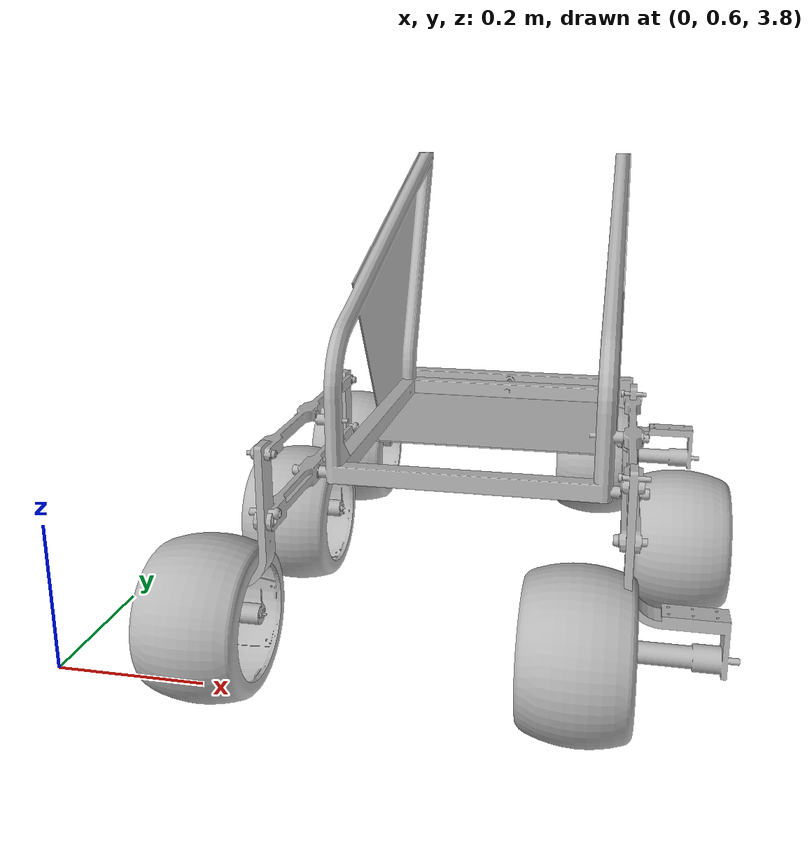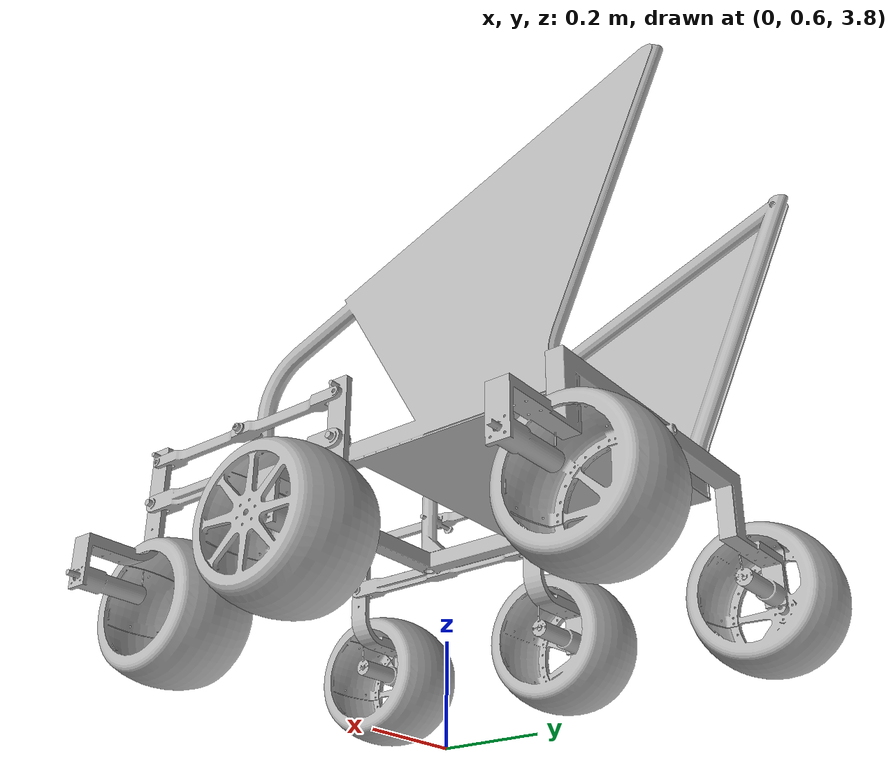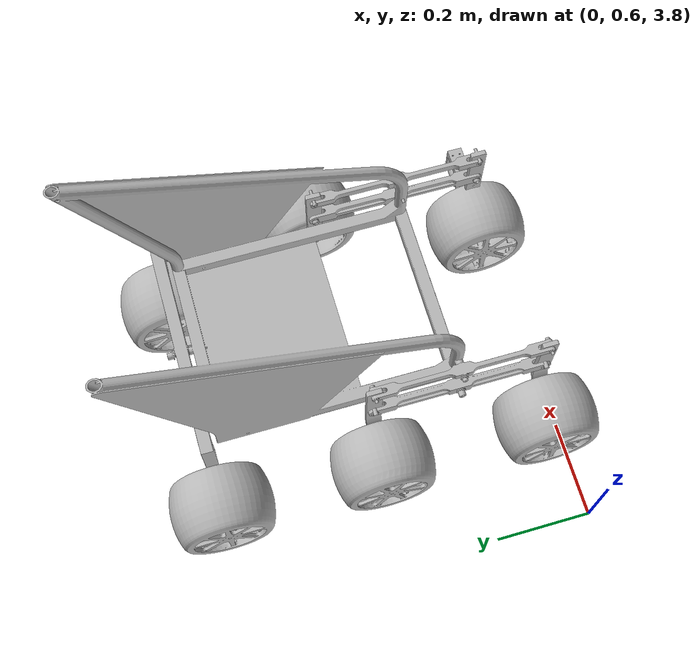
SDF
<?xml verion='1.0'?>
<sdf version='1.4'>
  <model name='surus_sim'>
    <pose>0.5 1 4 0 0 3.14</pose>
    <link name='base_link'>
      <pose>0 0 0 0 -0 0</pose>
      <inertial>
        <pose>9.82193e-08 0.156634 0.148833 0 -0 0</pose>
        <mass>4.8815</mass>
        <inertia>
          <ixx>0.261849</ixx>
          <ixy>3.50817e-07</ixy>
          <ixz>5.97879e-07</ixz>
          <iyy>0.320855</iyy>
          <iyz>0.0511772</iyz>
          <izz>0.242019</izz>
        </inertia>
      </inertial>
      <collision name='base_link_collision'>
        <pose>0 0 0 0 -0 0</pose>
        <geometry>
          <mesh>
            <scale>1 1 1</scale>
            <uri>model://meshes/base_link.STL</uri>
          </mesh>
        </geometry>
      </collision>
      <visual name='base_link_visual'>
        <pose>0 0 0 0 -0 0</pose>
        <geometry>
          <mesh>
            <scale>1 1 1</scale>
            <uri>model://surus_sim/meshes/base_link/base_link.DAE</uri>
          </mesh>
        </geometry>
      </visual>
      <velocity_decay>
        <linear>0</linear>
        <angular>0</angular>
      </velocity_decay>
    </link>
    <link name='left_bot_link'>
      <pose>-0.206375 0.187325 0.014986 -1.5708 -5.55112e-17 -1.5708</pose>
      <inertial>
        <pose>9.02039e-05 1.18183e-06 -0.012688 0 -0 0</pose>
        <mass>0.43167</mass>
        <inertia>
          <ixx>3.69944e-05</ixx>
          <ixy>1.50093e-07</ixy>
          <ixz>1.23836e-07</ixz>
          <iyy>0.00497322</iyy>
          <iyz>7.9505e-09</iyz>
          <izz>0.00497491</izz>
        </inertia>
      </inertial>
      <collision name='left_bot_link_collision'>
        <pose>0 0 0 0 -0 0</pose>
        <geometry>
          <mesh>
            <scale>1 1 1</scale>
            <uri>model://surus_sim/meshes/left_bot_link.STL</uri>
          </mesh>
        </geometry>
      </collision>
      <visual name='left_bot_link_visual'>
        <pose>0 0 0 0 -0 0</pose>
        <geometry>
          <mesh>
            <scale>1 1 1</scale>
            <uri>model://surus_sim/meshes/left_bot_link.STL</uri>
          </mesh>
        </geometry>
      </visual>
      <velocity_decay>
        <linear>0</linear>
        <angular>0</angular>
      </velocity_decay>
    </link>
    <joint name='left_bot_joint' type='revolute'>
      <child>left_bot_link</child>
      <parent>base_link</parent>
      <axis>
        <xyz>-1 3.60822e-15 3.60822e-15</xyz>
        <limit>
          <lower>-1e+16</lower>
          <upper>1e+16</upper>
        </limit>
        <dynamics/>
      </axis>
    </joint>
    <link name='left_top_link'>
      <pose>-0.206375 0.187325 0.091186 1.5708 -5.55112e-17 1.5708</pose>
      <inertial>
        <pose>9.74702e-06 -1.35767e-10 -0.0127032 0 -0 0</pose>
        <mass>0.221532</mass>
        <inertia>
          <ixx>1.23673e-05</ixx>
          <ixy>3.22033e-12</ixy>
          <ixz>-1.44908e-08</ixz>
          <iyy>0.00271814</iyy>
          <iyz>2.51895e-13</iyz>
          <izz>0.00271468</izz>
        </inertia>
      </inertial>
      <collision name='left_top_link_collision'>
        <pose>0 0 0 0 -0 0</pose>
        <geometry>
          <mesh>
            <scale>1 1 1</scale>
            <uri>model://surus_sim/meshes/left_top_link.STL</uri>
          </mesh>
        </geometry>
      </collision>
      <visual name='left_top_link_visual'>
        <pose>0 0 0 0 -0 0</pose>
        <geometry>
          <mesh>
            <scale>1 1 1</scale>
            <uri>model://surus_sim/meshes/left_top_link.STL</uri>
          </mesh>
        </geometry>
      </visual>
      <velocity_decay>
        <linear>0</linear>
        <angular>0</angular>
      </velocity_decay>
    </link>
    <joint name='left_top_link_joint' type='revolute'>
      <child>left_top_link</child>
      <parent>base_link</parent>
      <axis>
        <xyz>-1 -3.60822e-15 3.60822e-15</xyz>
        <limit>
          <lower>-1e+16</lower>
          <upper>1e+16</upper>
        </limit>
        <dynamics/>
      </axis>
    </joint>
    <link name='left_vert_back_link'>
      <pose>-0.206375 0.009525 0.091186 -1.5708 0 1.5708</pose>
      <inertial>
        <pose>0.118724 -0.0490373 -0.0508879 0 -0 0</pose>
        <mass>0.380721</mass>
        <inertia>
          <ixx>0.000972882</ixx>
          <ixy>-0.00059396</ixy>
          <ixz>-0.000728839</ixz>
          <iyy>0.00216633</iyy>
          <iyz>0.000301022</iyz>
          <izz>0.00174116</izz>
        </inertia>
      </inertial>
      <collision name='left_vert_back_link_collision'>
        <pose>0 0 0 0 -0 0</pose>
        <geometry>
          <mesh>
            <scale>1 1 1</scale>
            <uri>model://surus_sim/meshes/right_vert_back_link.STL</uri>
          </mesh>
        </geometry>
      </collision>
      <visual name='left_vert_back_link_visual'>
        <pose>0 0 0 0 -0 0</pose>
        <geometry>
          <mesh>
            <scale>1 1 1</scale>
            <uri>model://surus_sim/meshes/right_vert_back_link.STL</uri>
          </mesh>
        </geometry>
      </visual>
      <velocity_decay>
        <linear>0</linear>
        <angular>0</angular>
      </velocity_decay>
    </link>
    <joint name='left_vert_back_top_joint' type='revolute'>
      <child>left_vert_back_link</child>
      <parent>left_top_link</parent>
      <axis>
        <xyz>-1 -3.60822e-15 3.75394e-15</xyz>
        <limit>
          <lower>-1e+16</lower>
          <upper>1e+16</upper>
        </limit>
        <dynamics/>
      </axis>
    </joint>
    <link name='left_mid_wheel'>
      <pose>-0.232225 0.00965 -0.123952 -1.5708 -0.822922 1.5708</pose>
      <inertial>
        <pose>2.70923e-11 -3.83119e-11 0.0766077 0 -0 0</pose>
        <mass>1.06273</mass>
        <inertia>
          <ixx>0.0065887</ixx>
          <ixy>-2.96403e-12</ixy>
          <ixz>2.67377e-10</ixz>
          <iyy>0.0065887</iyy>
          <iyz>1.89768e-10</iyz>
          <izz>0.00854795</izz>
        </inertia>
      </inertial>
      <collision name='left_mid_wheel_collision'>
        <pose>0 0 0 0 -0 0</pose>
        <geometry>
          <mesh>
            <scale>1 1 1</scale>
            <uri>model://surus_sim/meshes/left_mid_wheel.STL</uri>
          </mesh>
        </geometry>
      </collision>
      <visual name='left_mid_wheel_visual'>
        <pose>0 0 0 0 -0 0</pose>
        <geometry>
          <mesh>
            <scale>1 1 1</scale>
            <uri>model://surus_sim/meshes/wheels/all_right_wheels/right_wheel.DAE</uri>
          </mesh>
        </geometry>
      </visual>
      <velocity_decay>
        <linear>0</linear>
        <angular>0</angular>
      </velocity_decay>
    </link>
    <joint name='left_mid_wheel_joint' type='revolute'>
      <child>left_mid_wheel</child>
      <parent>left_vert_back_link</parent>
      <axis>
        <xyz>-1 -1.33227e-15 5.9952e-15</xyz>
        <limit>
          <lower>-1e+16</lower>
          <upper>1e+16</upper>
        </limit>
        <dynamics/>
      </axis>
    </joint>
    <link name='left_vert_front_link'>
      <pose>-0.206375 0.365125 0.091186 -1.5708 0 1.5708</pose>
      <inertial>
        <pose>-0.118724 0.0490373 -0.0508879 0 -0 0</pose>
        <mass>0.380721</mass>
        <inertia>
          <ixx>0.000972882</ixx>
          <ixy>-0.00059396</ixy>
          <ixz>0.000728839</ixz>
          <iyy>0.00216633</iyy>
          <iyz>-0.000301022</iyz>
          <izz>0.00174116</izz>
        </inertia>
      </inertial>
      <collision name='left_vert_front_link_collision'>
        <pose>0 0 0 0 -0 0</pose>
        <geometry>
          <mesh>
            <scale>1 1 1</scale>
	    <uri>model://surus_sim/meshes/right_vert_back_link.STL</uri>
          </mesh>
        </geometry>
      </collision>
      <visual name='left_vert_front_link_visual'>
        <pose>0 0 0 0 -0 0</pose>
        <geometry>
          <mesh>
            <scale>1 1 1</scale>
            <uri>model://surus_sim/meshes/right_vert_back_link.STL</uri>
          </mesh>
        </geometry>
      </visual>
      <velocity_decay>
        <linear>0</linear>
        <angular>0</angular>
      </velocity_decay>
    </link>
    <joint name='left_vert_front_top_joint' type='revolute'>
      <child>left_vert_front_link</child>
      <parent>left_top_link</parent>
      <axis>
        <xyz>-1 -3.63598e-15 3.77476e-15</xyz>
        <limit>
          <lower>-1e+16</lower>
          <upper>1e+16</upper>
        </limit>
        <dynamics/>
      </axis>
    </joint>
    <link name='left_front_wheel'>
      <pose>-0.232225 0.36525 -0.123952 -1.5708 -3.10862e-15 1.5708</pose>
      <inertial>
        <pose>2.71474e-11 3.83121e-11 -0.0766077 0 -0 0</pose>
        <mass>1.06273</mass>
        <inertia>
          <ixx>0.0065887</ixx>
          <ixy>2.96403e-12</ixy>
          <ixz>-2.67376e-10</ixz>
          <iyy>0.0065887</iyy>
          <iyz>1.89768e-10</iyz>
          <izz>0.00854795</izz>
        </inertia>
      </inertial>
      <collision name='left_front_wheel_collision'>
        <pose>0 0 0 0 -0 0</pose>
        <geometry>
          <mesh>
            <scale>1 1 1</scale>
            <uri>model://surus_sim/meshes/left_front_wheel.STL</uri>
          </mesh>
        </geometry>
      </collision>
      <visual name='left_front_wheel_visual'>
        <pose>0 0 0 0 -0 0</pose>
        <geometry>
          <mesh>
            <scale>1 1 1</scale>
            <uri>model://surus_sim/meshes/wheels/all_right_wheels/right_wheel.DAE</uri>
          </mesh>
        </geometry>
      </visual>
      <velocity_decay>
        <linear>0</linear>
        <angular>0</angular>
      </velocity_decay>
    </link>
    <joint name='left_front_wheel_joint' type='revolute'>
      <child>left_front_wheel</child>
      <parent>left_vert_front_link</parent>
      <axis>
        <xyz>-1 -3.66374e-15 3.83027e-15</xyz>
        <limit>
          <lower>-1e+16</lower>
          <upper>1e+16</upper>
        </limit>
        <dynamics/>
      </axis>
    </joint>
    <link name='rear_rocker_link'>
      <pose>0 -0.311013 0.014986 -1.5708 -5.55112e-17 -1.5708</pose>
      <inertial>
        <pose>0.0191873 0.049316 -4.21302e-12 0 -0 0</pose>
        <mass>0.778383</mass>
        <inertia>
          <ixx>0.0385677</ixx>
          <ixy>-5.49053e-09</ixy>
          <ixz>2.80742e-06</ixz>
          <iyy>0.0364122</iyy>
          <iyz>6.61432e-10</iyz>
          <izz>0.00228047</izz>
        </inertia>
      </inertial>
      <collision name='rear_rocker_link_collision'>
        <pose>0 0 0 0 -0 0</pose>
        <geometry>
          <mesh>
            <scale>1 1 1</scale>
            <uri>model://surus_sim/meshes/rear_rocker_link.STL</uri>
          </mesh>
        </geometry>
      </collision>
      <visual name='rear_rocker_link_visual'>
        <pose>0 0 0 0 -0 0</pose>
        <geometry>
          <mesh>
            <scale>1 1 1</scale>
            <uri>model://surus_sim/meshes/rear_rocker_link.STL</uri>
          </mesh>
        </geometry>
      </visual>
      <velocity_decay>
        <linear>0</linear>
        <angular>0</angular>
      </velocity_decay>
    </link>
    <joint name='rear_rocker_joint' type='revolute'>
      <child>rear_rocker_link</child>
      <parent>base_link</parent>
      <axis>
        <xyz>3.60822e-15 1 -5.55112e-17</xyz>
        <limit>
          <lower>-1e+16</lower>
          <upper>1e+16</upper>
        </limit>
        <dynamics/>
      </axis>
    </joint>
    <link name='rear_left_wheel_link'>
      <pose>-0.22905 -0.330073 -0.123952 -1.5708 -5.55112e-17 1.5708</pose>
      <inertial>
        <pose>2.71476e-11 3.8312e-11 -0.0766077 0 -0 0</pose>
        <mass>1.06273</mass>
        <inertia>
          <ixx>0.0065887</ixx>
          <ixy>2.96403e-12</ixy>
          <ixz>-2.67376e-10</ixz>
          <iyy>0.0065887</iyy>
          <iyz>1.89768e-10</iyz>
          <izz>0.00854795</izz>
        </inertia>
      </inertial>
      <collision name='rear_left_wheel_link_collision'>
        <pose>0 0 0 0 -0 0</pose>
        <geometry>
          <mesh>
            <scale>1 1 1</scale>
            <uri>model://surus_sim/meshes/rear_left_wheel_link.STL</uri>
          </mesh>
        </geometry>
      </collision>
      <visual name='rear_left_wheel_link_visual'>
        <pose>0 0 0 0 -0 0</pose>
        <geometry>
          <mesh>
            <scale>1 1 1</scale>
            <uri>model://surus_sim/meshes/wheels/all_right_wheels/right_wheel.DAE</uri>
          </mesh>
        </geometry>
      </visual>
      <velocity_decay>
        <linear>0</linear>
        <angular>0</angular>
      </velocity_decay>
    </link>
    <joint name='rear_left_wheel_joint' type='revolute'>
      <child>rear_left_wheel_link</child>
      <parent>rear_rocker_link</parent>
      <axis>
        <xyz>-1 3.60822e-15 3.4972e-15</xyz>
        <limit>
          <lower>-1e+16</lower>
          <upper>1e+16</upper>
        </limit>
        <dynamics/>
      </axis>
    </joint>
    <link name='rear_right_wheel'>
      <pose>0.22905 -0.330327 -0.123952 1.5708 3.27516e-15 1.5708</pose>
      <inertial>
        <pose>2.70903e-11 -3.83118e-11 0.0766077 0 -0 0</pose>
        <mass>1.06273</mass>
        <inertia>
          <ixx>0.0065887</ixx>
          <ixy>-2.96428e-12</ixy>
          <ixz>2.67377e-10</ixz>
          <iyy>0.0065887</iyy>
          <iyz>1.89768e-10</iyz>
          <izz>0.00854795</izz>
        </inertia>
      </inertial>
      <collision name='rear_right_wheel_collision'>
        <pose>0 0 0 0 -0 0</pose>
        <geometry>
          <mesh>
            <scale>1 1 1</scale>
            <uri>model://surus_sim/meshes/rear_right_wheel.STL</uri>
          </mesh>
        </geometry>
      </collision>
      <visual name='rear_right_wheel_visual'>
        <pose>0 0 0 0 -0 0</pose>
        <geometry>
          <mesh>
            <scale>1 1 1</scale>
            <uri>model://surus_sim/meshes/wheels/all_right_wheels/right_wheel.DAE</uri>
          </mesh>
        </geometry>
      </visual>
      <velocity_decay>
        <linear>0</linear>
        <angular>0</angular>
      </velocity_decay>
    </link>
    <joint name='rear_right_wheel_joint' type='revolute'>
      <child>rear_right_wheel</child>
      <parent>rear_rocker_link</parent>
      <axis>
        <xyz>-1 3.69149e-15 3.4972e-15</xyz>
        <limit>
          <lower>-1e+16</lower>
          <upper>1e+16</upper>
        </limit>
        <dynamics/>
      </axis>
    </joint>
    <link name='right_bot_link'>
      <pose>0.206375 0.187325 0.014986 1.5708 -5.55112e-17 1.5708</pose>
      <inertial>
        <pose>9.02039e-05 -1.18183e-06 0.012688 0 -0 0</pose>
        <mass>0.43167</mass>
        <inertia>
          <ixx>3.69944e-05</ixx>
          <ixy>-1.50093e-07</ixy>
          <ixz>-1.23836e-07</ixz>
          <iyy>0.00497322</iyy>
          <iyz>7.9505e-09</iyz>
          <izz>0.00497491</izz>
        </inertia>
      </inertial>
      <collision name='right_bot_link_collision'>
        <pose>0 0 0 0 -0 0</pose>
        <geometry>
          <mesh>
            <scale>1 1 1</scale>
            <uri>model://surus_sim/meshes/right_bot_link.STL</uri>
          </mesh>
        </geometry>
      </collision>
      <visual name='right_bot_link_visual'>
        <pose>0 0 0 0 -0 0</pose>
        <geometry>
          <mesh>
            <scale>1 1 1</scale>
            <uri>model://surus_sim/meshes/right_bot_link.STL</uri>
          </mesh>
        </geometry>
      </visual>
      <velocity_decay>
        <linear>0</linear>
        <angular>0</angular>
      </velocity_decay>
    </link>
    <joint name='right_bot_joint' type='revolute'>
      <child>right_bot_link</child>
      <parent>base_link</parent>
      <axis>
        <xyz>-1 -3.60822e-15 3.60822e-15</xyz>
        <limit>
          <lower>-1e+16</lower>
          <upper>1e+16</upper>
        </limit>
        <dynamics/>
      </axis>
    </joint>
    <link name='right_top_link'>
      <pose>0.206375 0.187325 0.091186 -1.5708 -5.55112e-17 -1.5708</pose>
      <inertial>
        <pose>9.74702e-06 1.35777e-10 0.0127032 0 -0 0</pose>
        <mass>0.221532</mass>
        <inertia>
          <ixx>1.23673e-05</ixx>
          <ixy>-3.22602e-12</ixy>
          <ixz>1.44908e-08</ixz>
          <iyy>0.00271814</iyy>
          <iyz>2.51895e-13</iyz>
          <izz>0.00271468</izz>
        </inertia>
      </inertial>
      <collision name='right_top_link_collision'>
        <pose>0 0 0 0 -0 0</pose>
        <geometry>
          <mesh>
            <scale>1 1 1</scale>
            <uri>model://surus_sim/meshes/right_top_link.STL</uri>
          </mesh>
        </geometry>
      </collision>
      <visual name='right_top_link_visual'>
        <pose>0 0 0 0 -0 0</pose>
        <geometry>
          <mesh>
            <scale>1 1 1</scale>
            <uri>model://surus_sim/meshes/right_top_link.STL</uri>
          </mesh>
        </geometry>
      </visual>
      <velocity_decay>
        <linear>0</linear>
        <angular>0</angular>
      </velocity_decay>
    </link>
    <joint name='right_top_joint' type='revolute'>
      <child>right_top_link</child>
      <parent>base_link</parent>
      <axis>
        <xyz>-1 3.60822e-15 3.60822e-15</xyz>
        <limit>
          <lower>-1e+16</lower>
          <upper>1e+16</upper>
        </limit>
        <dynamics/>
      </axis>
    </joint>
    <link name='right_vert_back_link'>
      <pose>0.206375 0.009525 0.091186 -1.5708 -5.55112e-17 -1.5708</pose>
      <inertial>
        <pose>1.31678e-05 0.128452 0.0508879 0 -0 0</pose>
        <mass>0.380721</mass>
        <inertia>
          <ixx>0.00241155</ixx>
          <ixy>4.3452e-07</ixy>
          <ixz>9.45521e-08</ixz>
          <iyy>0.000727663</iyy>
          <iyz>0.000788556</iyz>
          <izz>0.00174116</izz>
        </inertia>
      </inertial>
      <collision name='right_vert_back_link_collision'>
        <pose>0 0 0 0 -0 0</pose>
        <geometry>
          <mesh>
            <scale>1 1 1</scale>
            <uri>model://surus_sim/meshes/right_vert_back_link.STL</uri>
          </mesh>
        </geometry>
      </collision>
      <visual name='right_vert_back_link_visual'>
        <pose>0 0 0 0 -0 0</pose>
        <geometry>
          <mesh>
            <scale>1 1 1</scale>
            <uri>model://surus_sim/meshes/right_vert_back_link.STL</uri>
          </mesh>
        </geometry>
      </visual>
      <velocity_decay>
        <linear>0</linear>
        <angular>0</angular>
      </velocity_decay>
    </link>
    <joint name='right_vert_top_back_joint' type='revolute'>
      <child>right_vert_back_link</child>
      <parent>right_top_link</parent>
      <axis>
        <xyz>-1 3.60822e-15 3.60822e-15</xyz>
        <limit>
          <lower>-1e+16</lower>
          <upper>1e+16</upper>
        </limit>
        <dynamics/>
      </axis>
    </joint>
    <link name='right_mid_wheel'>
      <pose>0.232225 0.0094 -0.123952 -1.5708 -1.179 -1.5708</pose>
      <inertial>
        <pose>2.69724e-11 -3.8262e-11 0.0766077 0 -0 0</pose>
        <mass>1.06273</mass>
        <inertia>
          <ixx>0.0065887</ixx>
          <ixy>-2.96403e-12</ixy>
          <ixz>2.67377e-10</ixz>
          <iyy>0.0065887</iyy>
          <iyz>1.89768e-10</iyz>
          <izz>0.00854795</izz>
        </inertia>
      </inertial>
      <collision name='right_mid_wheel_collision'>
        <pose>0 0 0 0 -0 0</pose>
        <geometry>
          <mesh>
            <scale>1 1 1</scale>
            <uri>model://surus_sim/meshes/right_mid_wheel.STL</uri>
          </mesh>
        </geometry>
      </collision>
      <visual name='right_mid_wheel_visual'>
        <pose>0 0 0 0 -0 0</pose>
        <geometry>
          <mesh>
            <scale>1 1 1</scale>
            <uri>model://surus_sim/meshes/wheels/all_right_wheels/right_wheel.DAE</uri>
          </mesh>
        </geometry>
      </visual>
      <velocity_decay>
        <linear>0</linear>
        <angular>0</angular>
      </velocity_decay>
    </link>
    <joint name='mid_wheel_joint' type='revolute'>
      <child>right_mid_wheel</child>
      <parent>right_vert_back_link</parent>
      <axis>
        <xyz>-1 3.60822e-15 3.60822e-15</xyz>
        <limit>
          <lower>-1e+16</lower>
          <upper>1e+16</upper>
        </limit>
        <dynamics/>
      </axis>
    </joint>
    <link name='right_vert_front_link'>
      <pose>0.206375 0.365125 0.091186 -1.5708 -5.55112e-17 -1.5708</pose>
      <inertial>
        <pose>1.31678e-05 0.128452 0.0508879 0 -0 0</pose>
        <mass>0.380721</mass>
        <inertia>
          <ixx>0.00241155</ixx>
          <ixy>4.3452e-07</ixy>
          <ixz>9.45521e-08</ixz>
          <iyy>0.000727663</iyy>
          <iyz>0.000788556</iyz>
          <izz>0.00174116</izz>
        </inertia>
      </inertial>
      <collision name='right_vert_front_link_collision'>
        <pose>0 0 0 0 -0 0</pose>
        <geometry>
          <mesh>
            <scale>1 1 1</scale>
            <uri>model://surus_sim/meshes/right_vert_front_link.STL</uri>
          </mesh>
        </geometry>
      </collision>
      <visual name='right_vert_front_link_visual'>
        <pose>0 0 0 0 -0 0</pose>
        <geometry>
          <mesh>
            <scale>1 1 1</scale>
            <uri>model://surus_sim/meshes/right_vert_front_link.STL</uri>
          </mesh>
        </geometry>
      </visual>
      <velocity_decay>
        <linear>0</linear>
        <angular>0</angular>
      </velocity_decay>
    </link>
    <joint name='right_vert_top_front_joint' type='revolute'>
      <child>right_vert_front_link</child>
      <parent>right_top_link</parent>
      <axis>
        <xyz>-1 3.60822e-15 3.60822e-15</xyz>
        <limit>
          <lower>-1e+16</lower>
          <upper>1e+16</upper>
        </limit>
        <dynamics/>
      </axis>
    </joint>
    <link name='right_front_wheel'>
      <pose>0.232225 0.365 -0.123952 1.5708 3.27516e-15 1.5708</pose>
      <inertial>
        <pose>2.70902e-11 -3.81492e-11 0.0766077 0 -0 0</pose>
        <mass>1.06273</mass>
        <inertia>
          <ixx>0.0065887</ixx>
          <ixy>-2.96428e-12</ixy>
          <ixz>2.67377e-10</ixz>
          <iyy>0.0065887</iyy>
          <iyz>1.89768e-10</iyz>
          <izz>0.00854795</izz>
        </inertia>
      </inertial>
      <collision name='right_front_wheel_collision'>
        <pose>0 0 0 0 -0 0</pose>
        <geometry>
          <mesh>
            <scale>1 1 1</scale>
            <uri>model://surus_sim/meshes/right_front_wheel.STL</uri>
          </mesh>
        </geometry>
      </collision>
      <visual name='right_front_wheel_visual'>
        <pose>0 0 0 0 -0 0</pose>
        <geometry>
          <mesh>
            <scale>1 1 1</scale>
            <uri>model://surus_sim/meshes/wheels/all_right_wheels/right_wheel.DAE</uri>
          </mesh>
        </geometry>
      </visual>
      <velocity_decay>
        <linear>0</linear>
        <angular>0</angular>
      </velocity_decay>
    </link>
    <joint name='right_front_wheel_joint' type='revolute'>
      <child>right_front_wheel</child>
      <parent>right_vert_front_link</parent>
      <axis>
        <xyz>-1 3.66374e-15 3.69149e-15</xyz>
        <limit>
          <lower>-1e+16</lower>
          <upper>1e+16</upper>
        </limit>
        <dynamics/>
      </axis>
    </joint>

    <joint name='right_vert_bot_front_joint' type='revolute'>
      <child>right_vert_front_link</child>
      <parent>right_bot_link</parent>
      <pose>0 0.0762 0 0 0 0</pose>
      <axis>
        <xyz>-1 3.60822e-15 3.60822e-15</xyz>
        <limit>
          <lower>-1e+16</lower>
          <upper>1e+16</upper>
        </limit>
        <dynamics/>
      </axis>
    </joint>

    <joint name='right_vert_bot_back_joint' type='revolute'>
      <child>right_vert_back_link</child>
      <parent>right_bot_link</parent>
      <pose>0 0.0762 0 0 0 0</pose>
      <axis>
        <xyz>-1 3.60822e-15 3.60822e-15</xyz>
        <limit>
          <lower>-1e+16</lower>
          <upper>1e+16</upper>
        </limit>
        <dynamics/>
      </axis>
    </joint>

    <joint name='left_vert_bot_front_joint' type='revolute'>
      <child>left_vert_front_link</child>
      <parent>left_bot_link</parent>
      <pose>0 0.0762 0 0 0 0</pose>
      <axis>
        <xyz>-1 3.60822e-15 3.60822e-15</xyz>
        <limit>
          <lower>-1e+16</lower>
          <upper>1e+16</upper>
        </limit>
        <dynamics/>
      </axis>
    </joint>

    <joint name='left_vert_bot_back_joint' type='revolute'>
      <child>left_vert_back_link</child>
      <parent>left_bot_link</parent>
      <pose>0 0.0762 0 0 0 0</pose>
      <axis>
        <xyz>-1 3.60822e-15 3.60822e-15</xyz>
        <limit>
          <lower>-1e+16</lower>
          <upper>1e+16</upper>
        </limit>
        <dynamics/>
      </axis>
    </joint>

    <plugin name="hector_6w_diff_controller" filename="libdiffdrive_plugin_6w.so">
            <alwaysOn>1</alwaysOn>
            <updateRate>10.0</updateRate>
            <wheelSeparation>0.5116</wheelSeparation>
            <wheelDiameter>0.2191</wheelDiameter>
            <torque>35</torque>
	    <frontLeftJoint>left_front_wheel_joint</frontLeftJoint>
            <frontRightJoint>right_front_wheel_joint</frontRightJoint>
            <midLeftJoint>left_mid_wheel_joint</midLeftJoint>
            <midRightJoint>mid_wheel_joint</midRightJoint>
            <rearLeftJoint>rear_left_wheel_joint</rearLeftJoint>
            <rearRightJoint>rear_right_wheel_joint</rearRightJoint>
    </plugin>

  </model>
</sdf>
